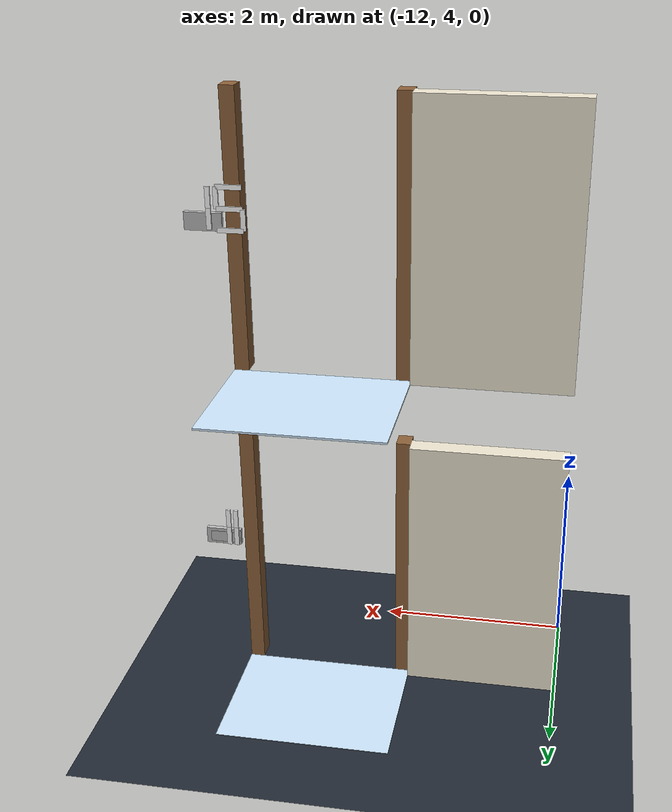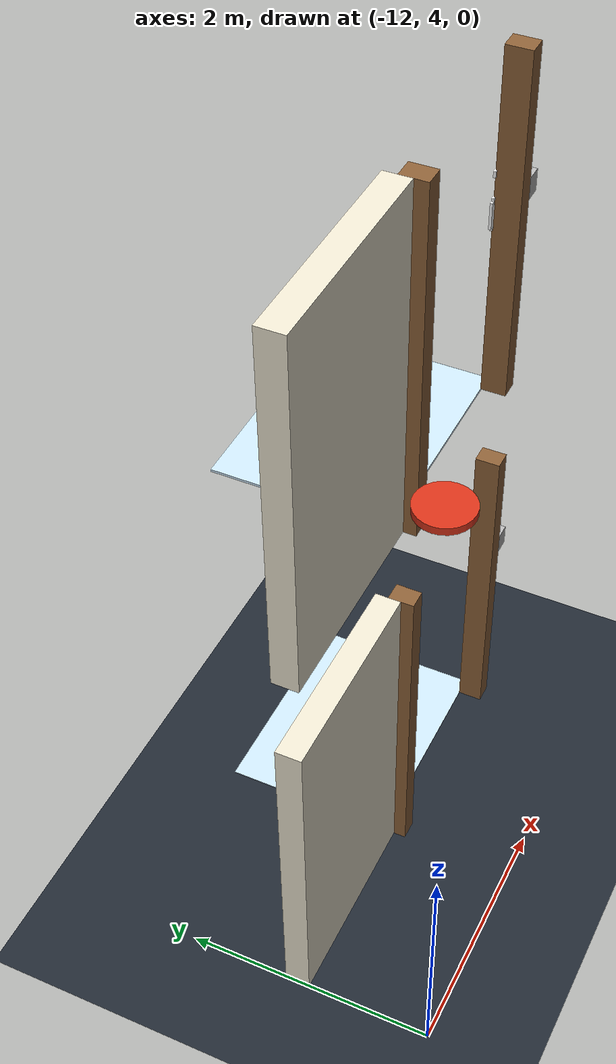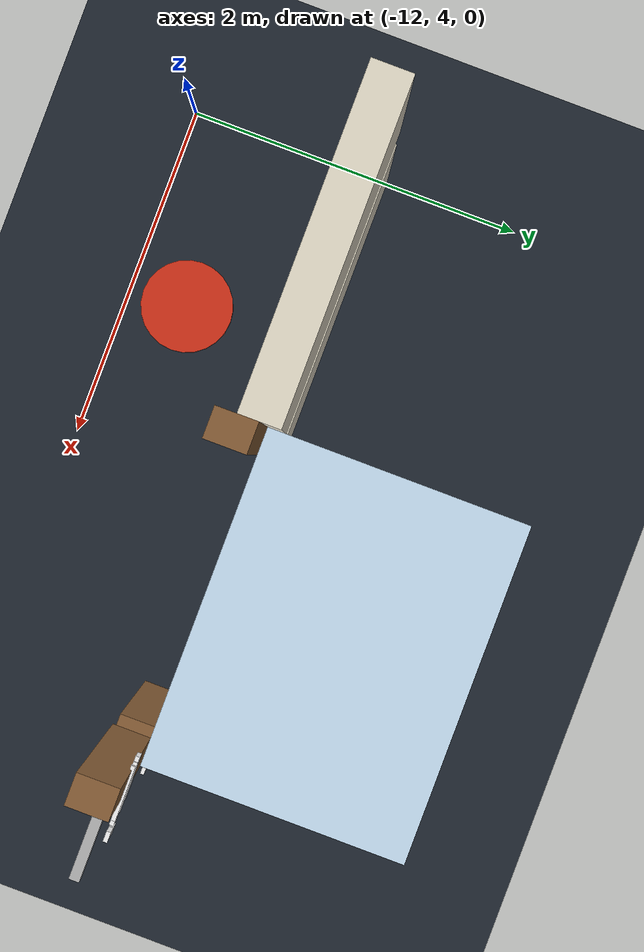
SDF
<sdf version="1.6">
 <world name="hotel_two_floor">
  <model name="ground_plane">
   <static>true</static>
   <link name="link">
    <collision name="col">
     <geometry><plane><normal>0 0 1</normal><size>100 100</size></plane></geometry>
    </collision>
    <visual name="vis">
     <geometry><plane><normal>0 0 1</normal><size>100 100</size></plane></geometry>
     <material><ambient>0.13 0.16 0.20 1</ambient><diffuse>0.13 0.16 0.20 1</diffuse></material>
    </visual>
   </link>
  </model>
  <model name="f1_seg_n_0">
   <static>true</static>
   <pose>-11.2000 5.1000 1.4000 0 0 0</pose>
   <link name="link">
    <collision name="col"><geometry><box><size>1.6000 0.2000 2.8000</size></box></geometry></collision>
    <visual name="vis">
     <geometry><box><size>1.6000 0.2000 2.8000</size></box></geometry>
     <material>
      <ambient>0.93 0.90 0.82 1</ambient>
      <diffuse>0.93 0.90 0.82 1</diffuse>
      <specular>0.10 0.10 0.10 1</specular>
     </material>
    </visual>
   </link>
  </model>
  <model name="f1_dp_n0L">
   <static>true</static>
   <pose>-10.3250 5.0000 1.4000 0 0 0</pose>
   <link name="link">
    <collision name="col"><geometry><box><size>0.1500 0.2000 2.8000</size></box></geometry></collision>
    <visual name="vis">
     <geometry><box><size>0.1500 0.2000 2.8000</size></box></geometry>
     <material>
      <ambient>0.55 0.38 0.22 1</ambient>
      <diffuse>0.55 0.38 0.22 1</diffuse>
      <specular>0.20 0.20 0.20 1</specular>
     </material>
    </visual>
   </link>
  </model>
  <model name="f1_dp_n0R">
   <static>true</static>
   <pose>-8.6750 5.0000 1.4000 0 0 0</pose>
   <link name="link">
    <collision name="col"><geometry><box><size>0.1500 0.2000 2.8000</size></box></geometry></collision>
    <visual name="vis">
     <geometry><box><size>0.1500 0.2000 2.8000</size></box></geometry>
     <material>
      <ambient>0.55 0.38 0.22 1</ambient>
      <diffuse>0.55 0.38 0.22 1</diffuse>
      <specular>0.20 0.20 0.20 1</specular>
     </material>
    </visual>
   </link>
  </model>
  <model name="f1_sign_n0">
   <static>true</static>
   <pose>-8.3500 5.0250 1.5000 0 0 0</pose>
   <link name="link">
    <collision name="col"><geometry><box><size>0.3800 0.0500 0.1800</size></box></geometry></collision>
    <visual name="vis">
     <geometry><box><size>0.3800 0.0500 0.1800</size></box></geometry>
     <material>
      <material>
       <ambient>0.11 0.43 0.82 1</ambient>
       <diffuse>0.11 0.43 0.82 1</diffuse>
       <specular>0.10 0.10 0.10 1</specular>
      </material>
     </material>
    </visual>
   </link>
  </model>
  <model name="f1_lbl_n0">
   <static>true</static>
   <pose>-8.3500 5.0550 1.5000 0 0 0</pose>
   <link name="link">
    <visual name="vis">
     <geometry><box><size>0.2800 0.0100 0.1200</size></box></geometry>
     <material>
      <material>
       <ambient>0.97 0.97 0.97 1</ambient>
       <diffuse>0.97 0.97 0.97 1</diffuse>
       <specular>0.10 0.10 0.10 1</specular>
      </material>
     </material>
    </visual>
   </link>
  </model>
  <model name="f1_pad_n_0">
   <static>true</static>
   <pose>-9.5000 5.8000 -0.0100 0 0 0</pose>
   <link name="link">
    <visual name="vis">
     <geometry><box><size>1.8000 1.4000 0.0200</size></box></geometry>
     <material>
      <ambient>0.80 0.90 0.98 1</ambient>
      <diffuse>0.80 0.90 0.98 1</diffuse>
      <specular>0.10 0.10 0.10 1</specular>
     </material>
    </visual>
   </link>
  </model>
  <model name="f1_room_n_105_0_b">
   <static>true</static>
   <pose>-8.5100 5.1000 1.7550 0 0 0</pose>
   <link name="link">
    <visual name="vis">
     <geometry><box><size>0.0500 0.0200 0.2100</size></box></geometry>
     <material>
      <ambient>0.98 0.98 0.98 1</ambient>
      <diffuse>0.98 0.98 0.98 1</diffuse>
      <specular>0.20 0.20 0.20 1</specular>
     </material>
    </visual>
   </link>
  </model>
  <model name="f1_room_n_105_0_c">
   <static>true</static>
   <pose>-8.5100 5.1000 1.5450 0 0 0</pose>
   <link name="link">
    <visual name="vis">
     <geometry><box><size>0.0500 0.0200 0.2100</size></box></geometry>
     <material>
      <ambient>0.98 0.98 0.98 1</ambient>
      <diffuse>0.98 0.98 0.98 1</diffuse>
      <specular>0.20 0.20 0.20 1</specular>
     </material>
    </visual>
   </link>
  </model>
  <model name="f1_room_n_105_1_f">
   <static>true</static>
   <pose>-8.4300 5.1000 1.7550 0 0 0</pose>
   <link name="link">
    <visual name="vis">
     <geometry><box><size>0.0500 0.0200 0.2100</size></box></geometry>
     <material>
      <ambient>0.98 0.98 0.98 1</ambient>
      <diffuse>0.98 0.98 0.98 1</diffuse>
      <specular>0.20 0.20 0.20 1</specular>
     </material>
    </visual>
   </link>
  </model>
  <model name="f1_room_n_105_1_e">
   <static>true</static>
   <pose>-8.4300 5.1000 1.5450 0 0 0</pose>
   <link name="link">
    <visual name="vis">
     <geometry><box><size>0.0500 0.0200 0.2100</size></box></geometry>
     <material>
      <ambient>0.98 0.98 0.98 1</ambient>
      <diffuse>0.98 0.98 0.98 1</diffuse>
      <specular>0.20 0.20 0.20 1</specular>
     </material>
    </visual>
   </link>
  </model>
  <model name="f2_seg_n_0">
   <static>true</static>
   <pose>-11.2000 5.1000 4.9000 0 0 0</pose>
   <link name="link">
    <collision name="col"><geometry><box><size>1.6000 0.2000 2.8000</size></box></geometry></collision>
    <visual name="vis">
     <geometry><box><size>1.6000 0.2000 2.8000</size></box></geometry>
     <material>
      <ambient>0.93 0.90 0.82 1</ambient>
      <diffuse>0.93 0.90 0.82 1</diffuse>
      <specular>0.10 0.10 0.10 1</specular>
     </material>
    </visual>
   </link>
  </model>
  <model name="f2_dp_n0L">
   <static>true</static>
   <pose>-10.3250 5.0000 4.9000 0 0 0</pose>
   <link name="link">
    <collision name="col"><geometry><box><size>0.1500 0.2000 2.8000</size></box></geometry></collision>
    <visual name="vis">
     <geometry><box><size>0.1500 0.2000 2.8000</size></box></geometry>
     <material>
      <ambient>0.55 0.38 0.22 1</ambient>
      <diffuse>0.55 0.38 0.22 1</diffuse>
      <specular>0.20 0.20 0.20 1</specular>
     </material>
    </visual>
   </link>
  </model>
  <model name="f2_dp_n0R">
   <static>true</static>
   <pose>-8.6750 5.0000 4.9000 0 0 0</pose>
   <link name="link">
    <collision name="col"><geometry><box><size>0.1500 0.2000 2.8000</size></box></geometry></collision>
    <visual name="vis">
     <geometry><box><size>0.1500 0.2000 2.8000</size></box></geometry>
     <material>
      <ambient>0.55 0.38 0.22 1</ambient>
      <diffuse>0.55 0.38 0.22 1</diffuse>
      <specular>0.20 0.20 0.20 1</specular>
     </material>
    </visual>
   </link>
  </model>
  <model name="f2_sign_n0">
   <static>true</static>
   <pose>-8.3500 5.0250 5.0000 0 0 0</pose>
   <link name="link">
    <collision name="col"><geometry><box><size>0.3800 0.0500 0.1800</size></box></geometry></collision>
    <visual name="vis">
     <geometry><box><size>0.3800 0.0500 0.1800</size></box></geometry>
     <material>
      <material>
       <ambient>0.11 0.43 0.82 1</ambient>
       <diffuse>0.11 0.43 0.82 1</diffuse>
       <specular>0.10 0.10 0.10 1</specular>
      </material>
     </material>
    </visual>
   </link>
  </model>
  <model name="f2_pad_n_0">
   <static>true</static>
   <pose>-9.5000 5.8000 3.4900 0 0 0</pose>
   <link name="link">
    <visual name="vis">
     <geometry><box><size>1.8000 1.4000 0.0200</size></box></geometry>
     <material>
      <ambient>0.80 0.90 0.98 1</ambient>
      <diffuse>0.80 0.90 0.98 1</diffuse>
      <specular>0.10 0.10 0.10 1</specular>
     </material>
    </visual>
   </link>
  </model>
  <model name="f2_room_n_205_0_a">
   <static>true</static>
   <pose>-8.6400 5.1000 5.3600 0 0 0</pose>
   <link name="link">
    <visual name="vis">
     <geometry><box><size>0.2600 0.0200 0.0500</size></box></geometry>
     <material>
      <ambient>0.98 0.98 0.98 1</ambient>
      <diffuse>0.98 0.98 0.98 1</diffuse>
      <specular>0.20 0.20 0.20 1</specular>
     </material>
    </visual>
   </link>
  </model>
  <model name="f2_room_n_205_0_b">
   <static>true</static>
   <pose>-8.5100 5.1000 5.2550 0 0 0</pose>
   <link name="link">
    <visual name="vis">
     <geometry><box><size>0.0500 0.0200 0.2100</size></box></geometry>
     <material>
      <ambient>0.98 0.98 0.98 1</ambient>
      <diffuse>0.98 0.98 0.98 1</diffuse>
      <specular>0.20 0.20 0.20 1</specular>
     </material>
    </visual>
   </link>
  </model>
  <model name="f2_room_n_205_0_g">
   <static>true</static>
   <pose>-8.6400 5.1000 5.1500 0 0 0</pose>
   <link name="link">
    <visual name="vis">
     <geometry><box><size>0.2600 0.0200 0.0500</size></box></geometry>
     <material>
      <ambient>0.98 0.98 0.98 1</ambient>
      <diffuse>0.98 0.98 0.98 1</diffuse>
      <specular>0.20 0.20 0.20 1</specular>
     </material>
    </visual>
   </link>
  </model>
  <model name="f2_room_n_205_0_e">
   <static>true</static>
   <pose>-8.7700 5.1000 5.0450 0 0 0</pose>
   <link name="link">
    <visual name="vis">
     <geometry><box><size>0.0500 0.0200 0.2100</size></box></geometry>
     <material>
      <ambient>0.98 0.98 0.98 1</ambient>
      <diffuse>0.98 0.98 0.98 1</diffuse>
      <specular>0.20 0.20 0.20 1</specular>
     </material>
    </visual>
   </link>
  </model>
  <model name="f2_room_n_205_0_d">
   <static>true</static>
   <pose>-8.6400 5.1000 4.9400 0 0 0</pose>
   <link name="link">
    <visual name="vis">
     <geometry><box><size>0.2600 0.0200 0.0500</size></box></geometry>
     <material>
      <ambient>0.98 0.98 0.98 1</ambient>
      <diffuse>0.98 0.98 0.98 1</diffuse>
      <specular>0.20 0.20 0.20 1</specular>
     </material>
    </visual>
   </link>
  </model>
  <model name="f2_room_n_205_1_f">
   <static>true</static>
   <pose>-8.4300 5.1000 5.2550 0 0 0</pose>
   <link name="link">
    <visual name="vis">
     <geometry><box><size>0.0500 0.0200 0.2100</size></box></geometry>
     <material>
      <ambient>0.98 0.98 0.98 1</ambient>
      <diffuse>0.98 0.98 0.98 1</diffuse>
      <specular>0.20 0.20 0.20 1</specular>
     </material>
    </visual>
   </link>
  </model>
  <model name="f2_room_n_205_1_e">
   <static>true</static>
   <pose>-8.4300 5.1000 5.0450 0 0 0</pose>
   <link name="link">
    <visual name="vis">
     <geometry><box><size>0.0500 0.0200 0.2100</size></box></geometry>
     <material>
      <ambient>0.98 0.98 0.98 1</ambient>
      <diffuse>0.98 0.98 0.98 1</diffuse>
      <specular>0.20 0.20 0.20 1</specular>
     </material>
    </visual>
   </link>
  </model>
  <model name="f2_trash_0_lid">
   <static>true</static>
   <pose>-10.8000 4.5500 4.2500 0 0 0</pose>
   <link name="link">
    <visual name="vis">
     <geometry><cylinder><radius>0.22</radius><length>0.06</length></cylinder></geometry>
     <material>
      <ambient>0.85 0.20 0.10 1</ambient>
      <diffuse>0.85 0.20 0.10 1</diffuse>
      <specular>0.30 0.30 0.30 1</specular>
     </material>
    </visual>
   </link>
  </model>
 </world>
</sdf>
